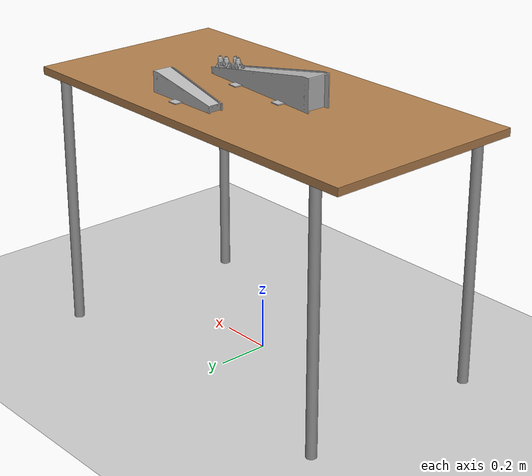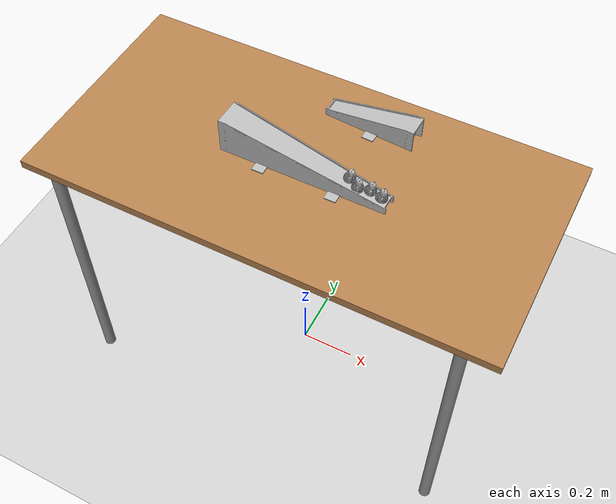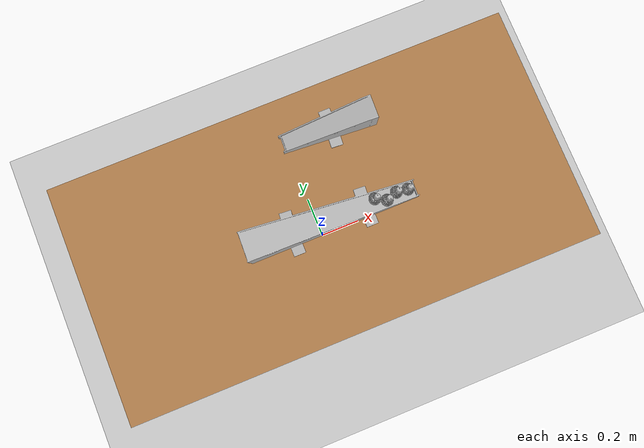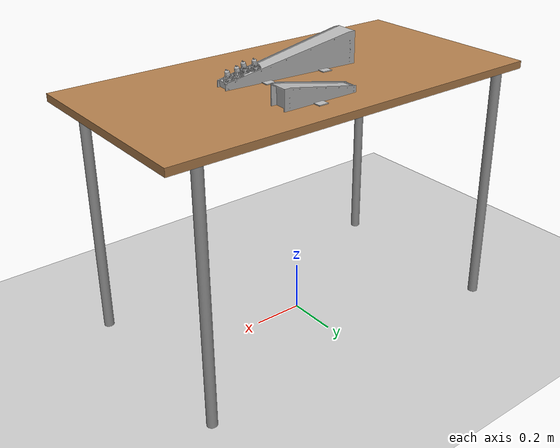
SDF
<sdf version="1.6">
 <world name="testing">
  <light name="sun" type="directional">
   <pose>0 0 10 0 -0 0</pose>
   <diffuse>0.8 0.8 0.8 1</diffuse>
   <specular>0.2 0.2 0.2 1</specular>
   <attenuation>
    <range>1000</range>
    <constant>0.9</constant>
    <linear>0.01</linear>
    <quadratic>0.001</quadratic>
   </attenuation>
   <direction>0 0.5 -0.9</direction>
  </light>
  <light name="point_light" type="point">
   <pose>0 -0.377195 6.59868 0 -0 0</pose>
   <diffuse>0.784314 0.784314 0.784314 1</diffuse>
   <specular>0.0980392 0.0980392 0.0980392 1</specular>
   <attenuation>
    <range>50</range>
    <constant>0.8</constant>
    <linear>0</linear>
    <quadratic>0.001</quadratic>
   </attenuation>
   <cast_shadows>0</cast_shadows>
   <direction>0 0 -1</direction>
  </light>
  <model name="ground_plane">
   <static>1</static>
   <link name="link">
    <collision name="collision">
     <geometry><plane><normal>0 0 1</normal><size>100 100</size></plane></geometry>
     <surface>
      <contact><collide_bitmask>65535</collide_bitmask></contact>
      <friction><ode><mu>100</mu><mu2>50</mu2></ode></friction>
     </surface>
    </collision>
    <visual name="visual">
     <cast_shadows>0</cast_shadows>
     <geometry><plane><normal>0 0 1</normal><size>100 100</size></plane></geometry>
     <material>
      <script><uri>file://media/materials/scripts/gazebo.material</uri><name>Gazebo/Grey</name></script>
     </material>
    </visual>
   </link>
  </model>
  <gravity>0 0 -9.8</gravity>
  <magnetic_field>6e-06 2.3e-05 -4.2e-05</magnetic_field>
  <atmosphere type="adiabatic"/>
  <physics name="default_physics" default="0" type="ode">
   <max_step_size>0.001</max_step_size>
   <real_time_factor>1</real_time_factor>
   <real_time_update_rate>1000</real_time_update_rate>
  </physics>
  <scene><ambient>0.4 0.4 0.4 1</ambient><background>0.7 0.7 0.7 1</background><shadows>1</shadows></scene>
  <audio><device>default</device></audio>
  <spherical_coordinates>
   <surface_model>EARTH_WGS84</surface_model>
   <latitude_deg>0</latitude_deg>
   <longitude_deg>0</longitude_deg>
   <elevation>0</elevation>
   <heading_deg>0</heading_deg>
  </spherical_coordinates>
  <model name="table">
   <static>1</static>
   <link name="link">
    <collision name="surface">
     <pose>0 0 1 0 -0 0</pose>
     <geometry><box><size>1.597 0.8 0.03</size></box></geometry>
     <surface><friction><ode><mu>0.6</mu><mu2>0.6</mu2></ode></friction></surface>
    </collision>
    <visual name="visual1">
     <pose>0 0 1 0 -0 0</pose>
     <geometry><box><size>1.597 0.8 0.03</size></box></geometry>
     <material>
      <script><uri>file://media/materials/scripts/gazebo.material</uri><name>Gazebo/Wood</name></script>
     </material>
    </visual>
    <collision name="front_left_leg">
     <pose>0.68 0.38 0.5 0 -0 0</pose>
     <geometry><cylinder><radius>0.02</radius><length>1</length></cylinder></geometry>
    </collision>
    <visual name="front_left_leg">
     <pose>0.68 0.38 0.5 0 -0 0</pose>
     <geometry><cylinder><radius>0.02</radius><length>1</length></cylinder></geometry>
     <material>
      <script><uri>file://media/materials/scripts/gazebo.material</uri><name>Gazebo/Grey</name></script>
     </material>
    </visual>
    <collision name="front_right_leg">
     <pose>0.68 -0.38 0.5 0 -0 0</pose>
     <geometry><cylinder><radius>0.02</radius><length>1</length></cylinder></geometry>
    </collision>
    <visual name="front_right_leg">
     <pose>0.68 -0.38 0.5 0 -0 0</pose>
     <geometry><cylinder><radius>0.02</radius><length>1</length></cylinder></geometry>
     <material>
      <script><uri>file://media/materials/scripts/gazebo.material</uri><name>Gazebo/Grey</name></script>
     </material>
    </visual>
    <collision name="back_right_leg">
     <pose>-0.68 -0.38 0.5 0 -0 0</pose>
     <geometry><cylinder><radius>0.02</radius><length>1</length></cylinder></geometry>
    </collision>
    <visual name="back_right_leg">
     <pose>-0.68 -0.38 0.5 0 -0 0</pose>
     <geometry><cylinder><radius>0.02</radius><length>1</length></cylinder></geometry>
     <material>
      <script><uri>file://media/materials/scripts/gazebo.material</uri><name>Gazebo/Grey</name></script>
     </material>
    </visual>
    <collision name="back_left_leg">
     <pose>-0.68 0.38 0.5 0 -0 0</pose>
     <geometry><cylinder><radius>0.02</radius><length>1</length></cylinder></geometry>
    </collision>
    <visual name="back_left_leg">
     <pose>-0.68 0.38 0.5 0 -0 0</pose>
     <geometry><cylinder><radius>0.02</radius><length>1</length></cylinder></geometry>
     <material>
      <script><uri>file://media/materials/scripts/gazebo.material</uri><name>Gazebo/Grey</name></script>
     </material>
    </visual>
   </link>
  </model>
  <model name="slide_short">
   <static>1</static>
   <link name="link">
    <collision name="collision">
     <pose>0 0 0 1.5708 -0 0</pose>
     <geometry><mesh><uri>model://slide_short/meshes/slide_short.obj</uri></mesh></geometry>
     <surface><friction><ode><mu>0.15</mu><mu2>0.15</mu2></ode></friction></surface>
    </collision>
    <visual name="visual">
     <pose>0 0 0 1.5708 -0 0</pose>
     <geometry><mesh><uri>model://slide_short/meshes/slide_short.obj</uri></mesh></geometry>
    </visual>
   </link>
   <pose>-0.041 0.27667 1.02 0 -0 0</pose>
  </model>
  <model name="slide_long">
   <static>1</static>
   <link name="link">
    <inertial><mass>1</mass></inertial>
    <collision name="collision">
     <pose>0 0 0 1.5708 -0 0</pose>
     <geometry><mesh><uri>model://slide_long/meshes/slide_long.obj</uri></mesh></geometry>
     <surface><friction><ode><mu>0.16</mu><mu2>0.16</mu2></ode></friction></surface>
    </collision>
    <visual name="visual">
     <pose>0 0 0 1.5708 -0 0</pose>
     <geometry><mesh><uri>model://slide_long/meshes/slide_long.obj</uri></mesh></geometry>
    </visual>
   </link>
   <pose>0.3045 -0.071 1.02 0 -0 3.14159</pose>
  </model>
  <model name="lamp">
   <static>0</static>
   <link name="link">
    <inertial>
     <mass>0.023</mass>
     <inertia>
      <ixx>9.183e-06</ixx>
      <ixy>0</ixy>
      <ixz>0</ixz>
      <iyy>9.183e-06</iyy>
      <iyz>0</iyz>
      <izz>7.188e-06</izz>
     </inertia>
    </inertial>
    <collision name="collision_low">
     <pose>0 0 0 3.14159 -0 0</pose>
     <geometry><cylinder><radius>0.02</radius><length>0.019</length></cylinder></geometry>
     <surface><friction><ode><mu>0.18</mu><mu2>0.18</mu2></ode></friction></surface>
    </collision>
    <collision name="collision_top">
     <pose>0 0 0.022 3.14159 -0 0</pose>
     <geometry><cylinder><radius>0.009</radius><length>0.025</length></cylinder></geometry>
     <surface><friction><ode><mu>100.0</mu><mu2>100.0</mu2></ode></friction></surface>
    </collision>
    <visual name="visual">
     <pose>0 0 0 3.14159 -0 0</pose>
     <geometry><mesh><scale>0.8 0.8 0.8</scale><uri>model://lamp/meshes/GU10.obj</uri></mesh></geometry>
    </visual>
   </link>
   <pose>0.27781 -0.03836 1.05485 -0.184963 0.011197 -1.54567</pose>
  </model>
  <model name="lamp_clone">
   <static>0</static>
   <link name="link">
    <inertial>
     <mass>0.023</mass>
     <inertia>
      <ixx>9.183e-06</ixx>
      <ixy>0</ixy>
      <ixz>0</ixz>
      <iyy>9.183e-06</iyy>
      <iyz>0</iyz>
      <izz>7.188e-06</izz>
     </inertia>
    </inertial>
    <collision name="collision_low">
     <pose>0 0 0 3.14159 -0 0</pose>
     <geometry><cylinder><radius>0.02</radius><length>0.019</length></cylinder></geometry>
     <surface><friction><ode><mu>0.18</mu><mu2>0.18</mu2></ode></friction></surface>
    </collision>
    <collision name="collision_top">
     <pose>0 0 0.022 3.14159 -0 0</pose>
     <geometry><cylinder><radius>0.009</radius><length>0.025</length></cylinder></geometry>
     <surface><friction><ode><mu>100.0</mu><mu2>100.0</mu2></ode></friction></surface>
    </collision>
    <visual name="visual">
     <pose>0 0 0 3.14159 -0 0</pose>
     <geometry><mesh><scale>0.8 0.8 0.8</scale><uri>model://lamp/meshes/GU10.obj</uri></mesh></geometry>
    </visual>
   </link>
   <pose>0.238696 -0.034353 1.0622 -0.185177 -0.00926 -1.65499</pose>
  </model>
  <model name="lamp_clone_clone">
   <static>0</static>
   <link name="link">
    <inertial>
     <mass>0.023</mass>
     <inertia>
      <ixx>9.183e-06</ixx>
      <ixy>0</ixy>
      <ixz>0</ixz>
      <iyy>9.183e-06</iyy>
      <iyz>0</iyz>
      <izz>7.188e-06</izz>
     </inertia>
    </inertial>
    <collision name="collision_low">
     <pose>0 0 0 3.14159 -0 0</pose>
     <geometry><cylinder><radius>0.02</radius><length>0.019</length></cylinder></geometry>
     <surface><friction><ode><mu>0.18</mu><mu2>0.18</mu2></ode></friction></surface>
    </collision>
    <collision name="collision_top">
     <pose>0 0 0.022 3.14159 -0 0</pose>
     <geometry><cylinder><radius>0.009</radius><length>0.025</length></cylinder></geometry>
     <surface><friction><ode><mu>100.0</mu><mu2>100.0</mu2></ode></friction></surface>
    </collision>
    <visual name="visual">
     <pose>0 0 0 3.14159 -0 0</pose>
     <geometry><mesh><scale>0.8 0.8 0.8</scale><uri>model://lamp/meshes/GU10.obj</uri></mesh></geometry>
    </visual>
   </link>
   <pose>0.16633 -0.029309 1.07577 -0.184502 -0.015769 -1.68966</pose>
  </model>
  <model name="lamp_clone_clone_clone">
   <static>0</static>
   <link name="link">
    <inertial>
     <mass>0.023</mass>
     <inertia>
      <ixx>9.183e-06</ixx>
      <ixy>0</ixy>
      <ixz>0</ixz>
      <iyy>9.183e-06</iyy>
      <iyz>0</iyz>
      <izz>7.188e-06</izz>
     </inertia>
    </inertial>
    <collision name="collision_low">
     <pose>0 0 0 3.14159 -0 0</pose>
     <geometry><cylinder><radius>0.02</radius><length>0.019</length></cylinder></geometry>
     <surface><friction><ode><mu>0.18</mu><mu2>0.18</mu2></ode></friction></surface>
    </collision>
    <collision name="collision_top">
     <pose>0 0 0.022 3.14159 -0 0</pose>
     <geometry><cylinder><radius>0.009</radius><length>0.025</length></cylinder></geometry>
     <surface><friction><ode><mu>100.0</mu><mu2>100.0</mu2></ode></friction></surface>
    </collision>
    <visual name="visual">
     <pose>0 0 0 3.14159 -0 0</pose>
     <geometry><mesh><scale>0.8 0.8 0.8</scale><uri>model://lamp/meshes/GU10.obj</uri></mesh></geometry>
    </visual>
   </link>
   <pose>0.201455 -0.047229 1.06907 -0.184444 -0.015417 -1.68792</pose>
  </model>
 </world>
</sdf>
